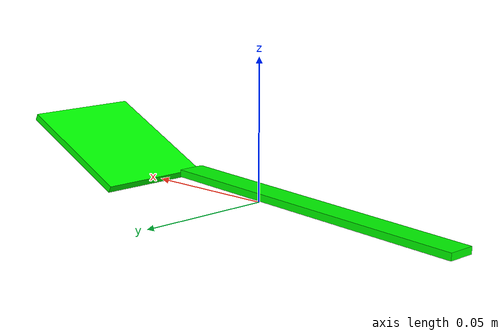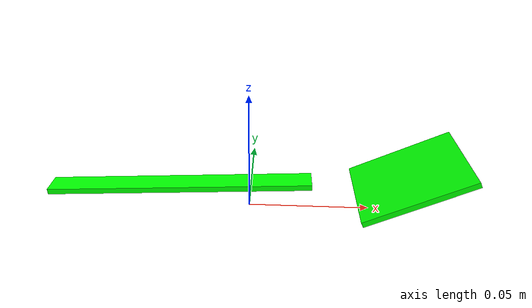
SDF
<?xml version="1.0" encoding="UTF-8"?>
<sdf version="1.6">
  <model name="thin_box">
    <link name="base_link">
      <pose frame="">0 0 0 0 0 0</pose>
      <inertial>
        <!-- The COM offset from the defined origin (m) -->
        <pose frame="">7.9737e-03 6.8264e-03 5.1174e-03 0 0 0</pose>
        <!-- Mass was obtained via scale measurements of the home demo spoon.
        -->
        <mass>52.78e-3</mass>
        <inertia>
          <ixx>5.20e-06</ixx>
          <ixy>0</ixy>
          <ixz>-7.51e-06</ixz>
          <iyy>166e-06</iyy>
          <iyz>0</iyz>
          <izz>169e-06</izz>
        </inertia>
      </inertial>
      <collision name="handle_collision">
        <pose frame="">-0.031 0.007 0.005 0 -0.05 0</pose>
        <geometry>
          <box>
            <size>0.115 0.01 0.0025</size>
          </box>
        </geometry>
        <surface>
          <friction>
            <ode>
              <mu>0.5</mu>
              <mu2>0.5</mu2>
            </ode>
          </friction>
        </surface>
      </collision>
      <collision name="bowl_collision">
        <pose frame="">0.067 0.007 0.0115 0 -0.45 0</pose>
        <geometry>
          <box>
            <size>0.047 0.042 0.0025</size>
          </box>
        </geometry>
      </collision>

      <visual name="visual_1">
        <pose frame="">-0.031 0.007 0.005 0 -0.05 0</pose>
        <geometry>
          <box>
            <size>0.115 0.01 0.0025</size>
          </box>
        </geometry>
        <material>
          <diffuse>0 1.00 0 1.0</diffuse>
        </material>
      </visual>
      <visual name="visual_2">
        <pose frame="">0.067 0.007 0.0115 0 -0.45 0</pose>
        <geometry>
          <box>
            <size>0.047 0.042 0.0025</size>
          </box>
        </geometry>
        <material>
          <diffuse>0 1.00 0 1.0</diffuse>
        </material>
      </visual>

      <!-- Add spheres to the corners of the collision boxes, to avoid
      bouncing. -->
      <collision name="handle_corner_col_0">
        <pose frame="">-0.0885 0.002 0.00225 0 0 0</pose>
        <geometry>
          <sphere>
            <radius>2e-3</radius>
          </sphere>
        </geometry>
      </collision>
      <collision name="handle_corner_col_1">
        <pose frame="">-0.0885 0.012 0.00225 0 0 0</pose>
        <geometry>
          <sphere>
            <radius>2e-3</radius>
          </sphere>
        </geometry>
      </collision>
      <collision name="bowl_corner_col_0">
        <pose frame="">0.088 0.028 0.022 0 0 0</pose>
        <geometry>
          <sphere>
            <radius>2e-3</radius>
          </sphere>
        </geometry>
      </collision>
      <collision name="bowl_corner_col_1">
        <pose frame="">0.088 -0.0145 0.022 0 0 0</pose>
        <geometry>
          <sphere>
            <radius>2e-3</radius>
          </sphere>
        </geometry>
      </collision>
      <collision name="bowl_corner_col_2">
        <pose frame="">0.046 -0.014 0.001 0 0 0</pose>
        <geometry>
          <sphere>
            <radius>2e-3</radius>
          </sphere>
        </geometry>
      </collision>
      <collision name="bowl_corner_col_3">
        <pose frame="">0.046 0.028 0.001 0 0 0</pose>
        <geometry>
          <sphere>
            <radius>2e-3</radius>
          </sphere>
        </geometry>
      </collision>

      <!-- Add collision spheres along the handle, which are used to make
      contact with the flat face of the gripper finger.-->
      <collision name="handle_sphere_col_0">
        <pose frame="">-0.080 0.007 0.005 0 0 0</pose>
        <geometry>
          <sphere>
            <radius>2e-3</radius>
          </sphere>
        </geometry>
      </collision>
      <collision name="handle_sphere_col_1">
        <pose frame="">-0.070 0.007 0.005 0 0 0</pose>
        <geometry>
          <sphere>
            <radius>2e-3</radius>
          </sphere>
        </geometry>
      </collision>
      <collision name="handle_sphere_col_2">
        <pose frame="">-0.060 0.007 0.005 0 0 0</pose>
        <geometry>
          <sphere>
            <radius>2e-3</radius>
          </sphere>
        </geometry>
      </collision>
      <collision name="handle_sphere_col_3">
        <pose frame="">-0.050 0.007 0.005 0 0 0</pose>
        <geometry>
          <sphere>
            <radius>2e-3</radius>
          </sphere>
        </geometry>
      </collision>
      <collision name="handle_sphere_col_4">
        <pose frame="">-0.040 0.007 0.005 0 0 0</pose>
        <geometry>
          <sphere>
            <radius>2e-3</radius>
          </sphere>
        </geometry>
      </collision>
      <collision name="handle_sphere_col_5">
        <pose frame="">-0.030 0.007 0.005 0 0 0</pose>
        <geometry>
          <sphere>
            <radius>2e-3</radius>
          </sphere>
        </geometry>
      </collision>
      <collision name="handle_sphere_col_6">
        <pose frame="">-0.020 0.007 0.005 0 0 0</pose>
        <geometry>
          <sphere>
            <radius>2e-3</radius>
          </sphere>
        </geometry>
      </collision>
      <collision name="handle_sphere_col_7">
        <pose frame="">-0.010 0.007 0.005 0 0 0</pose>
        <geometry>
          <sphere>
            <radius>2e-3</radius>
          </sphere>
        </geometry>
      </collision>
      <collision name="handle_sphere_col_8">
        <pose frame="">-0 0.007 0.005 0 0 0</pose>
        <geometry>
          <sphere>
            <radius>2e-3</radius>
          </sphere>
        </geometry>
      </collision>
      <collision name="handle_sphere_col_9">
        <pose frame="">0.010 0.007 0.005 0 0 0</pose>
        <geometry>
          <sphere>
            <radius>2e-3</radius>
          </sphere>
        </geometry>
      </collision>
      <collision name="handle_sphere_col_10">
        <pose frame="">0.020 0.007 0.005 0 0 0</pose>
        <geometry>
          <sphere>
            <radius>2e-3</radius>
          </sphere>
        </geometry>
      </collision>
    </link>

    <!--&lt;!&ndash; A dummy link for locating the grasp frame. &ndash;&gt;-->
    <!--&lt;!&ndash; Ensure that the `spoon` frame lies along the symmetry axis.&ndash;&gt;-->
  </model>
</sdf>
